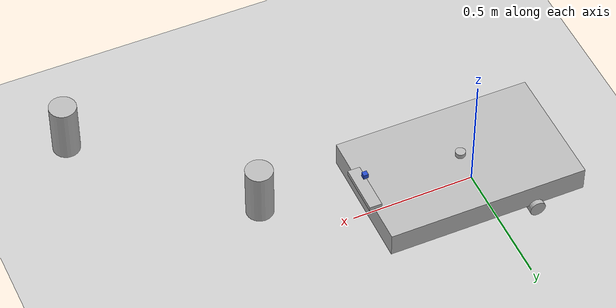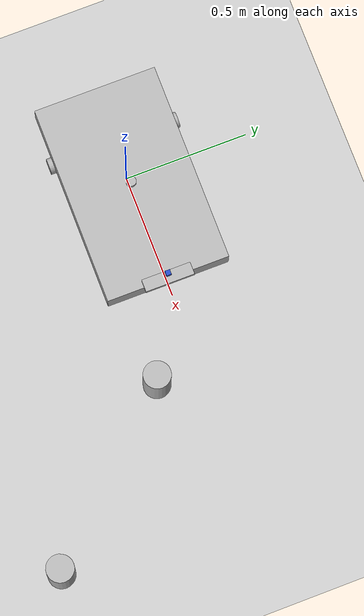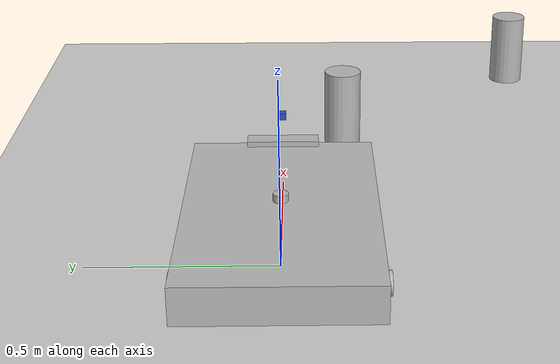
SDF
<sdf version="1.7">
 <world name="default">
  <light name="sun" type="directional">
   <pose>0 0 10 0 -0 0</pose>
   <diffuse>0.8 0.8 0.8 1</diffuse>
   <specular>0.2 0.2 0.2 1</specular>
   <attenuation>
    <range>1000</range>
    <constant>0.9</constant>
    <linear>0.01</linear>
    <quadratic>0.001</quadratic>
   </attenuation>
   <direction>-0.5 0.1 -0.9</direction>
   <spot><inner_angle>0</inner_angle><outer_angle>0</outer_angle><falloff>0</falloff></spot>
  </light>
  <model name="ground_plane">
   <static>1</static>
   <link name="link">
    <collision name="collision">
     <geometry><plane><normal>0 0 1</normal><size>100 100</size></plane></geometry>
     <surface><friction><ode><mu>100</mu><mu2>50</mu2></ode></friction></surface>
    </collision>
    <visual name="visual">
     <cast_shadows>0</cast_shadows>
     <geometry><plane><normal>0 0 1</normal><size>100 100</size></plane></geometry>
     <material>
      <script><uri>file://media/materials/scripts/gazebo.material</uri><name>Gazebo/Grey</name></script>
     </material>
    </visual>
   </link>
  </model>
  <gravity>0 0 -9.8</gravity>
  <magnetic_field>6e-06 2.3e-05 -4.2e-05</magnetic_field>
  <atmosphere type="adiabatic"/>
  <physics type="ode">
   <max_step_size>0.001</max_step_size>
   <real_time_factor>1</real_time_factor>
   <real_time_update_rate>1000</real_time_update_rate>
  </physics>
  <scene><ambient>0.4 0.4 0.4 1</ambient><background>0.7 0.7 0.7 1</background><shadows>1</shadows></scene>
  <audio><device>default</device></audio>
  <spherical_coordinates>
   <surface_model>EARTH_WGS84</surface_model>
   <latitude_deg>0</latitude_deg>
   <longitude_deg>0</longitude_deg>
   <elevation>0</elevation>
   <heading_deg>0</heading_deg>
  </spherical_coordinates>
  <model name="deratebot">
   <link name="base_link">
    <inertial>
     <pose>0.008789 0 0.007579 1.5708 -0 1.5708</pose>
     <mass>1.14</mass>
     <inertia>
      <ixx>0.0259943</ixx>
      <ixy>-1.31102e-19</ixy>
      <ixz>-1.0006e-18</ixz>
      <iyy>0.0789348</iyy>
      <iyz>-0.000450539</iyz>
      <izz>0.0561688</izz>
     </inertia>
    </inertial>
    <collision name="base_link_collision"><geometry><box><size>0.809 0.5 0.1</size></box></geometry></collision>
    <collision name="base_link_fixed_joint_lump__caster_link_collision_1">
     <pose>0.202 0 -0.076 0 -0 0</pose>
     <geometry><sphere><radius>0.016</radius></sphere></geometry>
     <surface>
      <contact><ode><kp>1e+06</kp><kd>10</kd></ode></contact>
      <friction><ode><mu>0</mu><mu2>0</mu2></ode></friction>
     </surface>
    </collision>
    <collision name="base_link_fixed_joint_lump__fight_fixed_link_collision_2">
     <pose>0.4 0 0.035 0 -0 0</pose>
     <geometry><box><size>0.01 0.01 0.03</size></box></geometry>
    </collision>
    <collision name="base_link_fixed_joint_lump__camera_link_collision_3">
     <pose>0.4 0 0.135 0 -0 0</pose>
     <geometry><box><size>0.02 0.02 0.02</size></box></geometry>
    </collision>
    <collision name="base_link_fixed_joint_lump__imu_link_collision_4">
     <pose>0 0 0.02 0 -0 0</pose>
     <geometry><box><size>0.02 0.02 0.02</size></box></geometry>
    </collision>
    <collision name="base_link_fixed_joint_lump__laser_link_collision_5">
     <pose>0 0 0.075 0 -0 0</pose>
     <geometry><cylinder><length>0.02</length><radius>0.02</radius></cylinder></geometry>
    </collision>
    <visual name="base_link_visual"><geometry><box><size>0.809 0.5 0.1</size></box></geometry></visual>
    <visual name="base_link_fixed_joint_lump__caster_link_visual_1">
     <pose>0.202 0 -0.076 0 -0 0</pose>
     <geometry><sphere><radius>0.016</radius></sphere></geometry>
     <material>
      <script><name>Gazebo/Black</name><uri>file://media/materials/scripts/gazebo.material</uri></script>
     </material>
    </visual>
    <visual name="base_link_fixed_joint_lump__fight_fixed_link_visual_2">
     <pose>0.4 0 0.035 0 -0 0</pose>
     <geometry><box><size>0.01 0.01 0.03</size></box></geometry>
    </visual>
    <visual name="base_link_fixed_joint_lump__camera_link_visual_3">
     <pose>0.4 0 0.135 0 -0 0</pose>
     <geometry><box><size>0.02 0.02 0.02</size></box></geometry>
     <material>
      <script><name>Gazebo/Blue</name><uri>file://media/materials/scripts/gazebo.material</uri></script>
     </material>
    </visual>
    <visual name="base_link_fixed_joint_lump__imu_link_visual_4">
     <pose>0 0 0.02 0 -0 0</pose>
     <geometry><box><size>0.02 0.02 0.02</size></box></geometry>
    </visual>
    <visual name="base_link_fixed_joint_lump__laser_link_visual_5">
     <pose>0 0 0.075 0 -0 0</pose>
     <geometry><cylinder><length>0.02</length><radius>0.02</radius></cylinder></geometry>
    </visual>
    <sensor name="camera" type="camera">
     <update_rate>30</update_rate>
     <camera name="head">
      <horizontal_fov>1.39626</horizontal_fov>
      <image><width>800</width><height>800</height><format>R8G8B8</format></image>
      <clip><near>0.02</near><far>300</far></clip>
      <noise><type>gaussian</type><mean>0</mean><stddev>0.007</stddev></noise>
     </camera>
     <plugin name="camera_controller" filename="libgazebo_ros_camera.so">
      <alwaysOn>1</alwaysOn>
      <updateRate>0.0</updateRate>
      <cameraName>/camera</cameraName>
      <imageTopicName>image_raw</imageTopicName>
      <cameraInfoTopicName>camera_info</cameraInfoTopicName>
      <frameName>camera_link</frameName>
      <hackBaseline>0.07</hackBaseline>
     </plugin>
     <pose>0.4 0 0.135 0 -0 0</pose>
    </sensor>
    <sensor name="imu_sensor" type="imu">
     <plugin name="imu_plugin" filename="libgazebo_ros_imu_sensor.so">
      <ros><namespace>/</namespace><remapping>~/out:=imu</remapping></ros>
      <initial_orientation_as_reference>0</initial_orientation_as_reference>
     </plugin>
     <always_on>1</always_on>
     <update_rate>100</update_rate>
     <visualize>1</visualize>
     <imu>
      <angular_velocity>
       <x>
        <noise type="gaussian">
         <mean>0</mean>
         <stddev>0.0002</stddev>
         <bias_mean>7.5e-06</bias_mean>
         <bias_stddev>8e-07</bias_stddev>
        </noise>
       </x>
       <y>
        <noise type="gaussian">
         <mean>0</mean>
         <stddev>0.0002</stddev>
         <bias_mean>7.5e-06</bias_mean>
         <bias_stddev>8e-07</bias_stddev>
        </noise>
       </y>
       <z>
        <noise type="gaussian">
         <mean>0</mean>
         <stddev>0.0002</stddev>
         <bias_mean>7.5e-06</bias_mean>
         <bias_stddev>8e-07</bias_stddev>
        </noise>
       </z>
      </angular_velocity>
      <linear_acceleration>
       <x>
        <noise type="gaussian">
         <mean>0</mean>
         <stddev>0.017</stddev>
         <bias_mean>0.1</bias_mean>
         <bias_stddev>0.001</bias_stddev>
        </noise>
       </x>
       <y>
        <noise type="gaussian">
         <mean>0</mean>
         <stddev>0.017</stddev>
         <bias_mean>0.1</bias_mean>
         <bias_stddev>0.001</bias_stddev>
        </noise>
       </y>
       <z>
        <noise type="gaussian">
         <mean>0</mean>
         <stddev>0.017</stddev>
         <bias_mean>0.1</bias_mean>
         <bias_stddev>0.001</bias_stddev>
        </noise>
       </z>
      </linear_acceleration>
     </imu>
     <pose>0 0 0.02 0 -0 0</pose>
    </sensor>
    <sensor name="laser_sensor" type="ray">
     <always_on>1</always_on>
     <visualize>1</visualize>
     <update_rate>10</update_rate>
     <ray>
      <scan>
       <horizontal>
        <samples>360</samples>
        <resolution>1</resolution>
        <min_angle>0</min_angle>
        <max_angle>6.28</max_angle>
       </horizontal>
       <vertical><samples>1</samples><min_angle>0</min_angle><max_angle>0</max_angle></vertical>
      </scan>
      <range><min>0.12</min><max>3.5</max><resolution>0.015</resolution></range>
      <noise><type>gaussian</type><mean>0</mean><stddev>0.01</stddev></noise>
     </ray>
     <plugin name="laserscan" filename="libgazebo_ros_ray_sensor.so">
      <ros><remapping>~/out:=scan</remapping></ros>
      <output_type>sensor_msgs/LaserScan</output_type>
      <frame_name>laser_link</frame_name>
     </plugin>
     <pose>0 0 0.075 0 -0 0</pose>
    </sensor>
   </link>
   <joint name="fight1_joint" type="prismatic">
    <pose relative_to="base_link">0.15 0 0.035 0 -0 0</pose>
    <parent>base_link</parent>
    <child>fight1_link</child>
    <axis>
     <xyz>1 0 0</xyz>
     <limit><lower>0</lower><upper>0.5</upper><effort>0.1</effort><velocity>0.15</velocity></limit>
     <dynamics><spring_reference>0</spring_reference><spring_stiffness>0</spring_stiffness></dynamics>
    </axis>
   </joint>
   <link name="fight1_link">
    <pose relative_to="fight1_joint">0 0 0 0 -0 0</pose>
    <inertial>
     <pose>0 0 0 1.5708 -0 1.5708</pose>
     <mass>0.01</mass>
     <inertia>
      <ixx>2.41667e-06</ixx>
      <ixy>0</ixy>
      <ixz>0</ixz>
      <iyy>0.000210417</iyy>
      <iyz>0</iyz>
      <izz>0.000208667</izz>
     </inertia>
    </inertial>
    <collision name="fight1_link_collision"><geometry><box><size>0.5 0.05 0.02</size></box></geometry></collision>
    <visual name="fight1_link_visual"><geometry><box><size>0.5 0.05 0.02</size></box></geometry></visual>
   </link>
   <joint name="fight2_joint" type="revolute">
    <pose relative_to="fight1_link">0.25 0 0.02 0 -0 0</pose>
    <parent>fight1_link</parent>
    <child>fight2_link</child>
    <axis>
     <xyz>0 0 1</xyz>
     <limit><lower>-1e+16</lower><upper>1e+16</upper></limit>
     <dynamics><spring_reference>0</spring_reference><spring_stiffness>0</spring_stiffness></dynamics>
    </axis>
   </joint>
   <link name="fight2_link">
    <pose relative_to="fight2_joint">0 0 0 0 -0 0</pose>
    <inertial>
     <pose>0 0 0 1.5708 -0 1.5708</pose>
     <mass>0.01</mass>
     <inertia>
      <ixx>2.41667e-06</ixx>
      <ixy>0</ixy>
      <ixz>0</ixz>
      <iyy>3.54167e-05</iyy>
      <iyz>0</iyz>
      <izz>3.36667e-05</izz>
     </inertia>
    </inertial>
    <collision name="fight2_link_collision"><geometry><box><size>0.2 0.05 0.02</size></box></geometry></collision>
    <visual name="fight2_link_visual">
     <pose>0 0 0 0 -0 1.57</pose>
     <geometry><box><size>0.2 0.05 0.02</size></box></geometry>
    </visual>
   </link>
   <joint name="left_wheel_joint" type="revolute">
    <pose relative_to="base_link">-0.202 0.25 -0.06 0 -0 0</pose>
    <parent>base_link</parent>
    <child>left_wheel_link</child>
    <axis>
     <xyz>0 1 0</xyz>
     <limit><lower>-1e+16</lower><upper>1e+16</upper></limit>
     <dynamics><spring_reference>0</spring_reference><spring_stiffness>0</spring_stiffness></dynamics>
    </axis>
   </joint>
   <link name="left_wheel_link">
    <pose relative_to="left_wheel_joint">0 0 0 0 -0 0</pose>
    <inertial>
     <pose>0 0 0 1.5708 -0 0</pose>
     <mass>0.1</mass>
     <inertia>
      <ixx>3.89333e-05</ixx>
      <ixy>0</ixy>
      <ixz>0</ixz>
      <iyy>3.89333e-05</iyy>
      <iyz>0</iyz>
      <izz>5.12e-05</izz>
     </inertia>
    </inertial>
    <collision name="left_wheel_link_collision">
     <pose>0 0 0 1.57079 -0 0</pose>
     <geometry><cylinder><length>0.04</length><radius>0.032</radius></cylinder></geometry>
    </collision>
    <visual name="left_wheel_link_visual">
     <pose>0 0 0 1.57079 -0 0</pose>
     <geometry><cylinder><length>0.04</length><radius>0.032</radius></cylinder></geometry>
    </visual>
   </link>
   <joint name="right_wheel_joint" type="revolute">
    <pose relative_to="base_link">-0.202 -0.25 -0.06 0 -0 0</pose>
    <parent>base_link</parent>
    <child>right_wheel_link</child>
    <axis>
     <xyz>0 1 0</xyz>
     <limit><lower>-1e+16</lower><upper>1e+16</upper></limit>
     <dynamics><spring_reference>0</spring_reference><spring_stiffness>0</spring_stiffness></dynamics>
    </axis>
   </joint>
   <link name="right_wheel_link">
    <pose relative_to="right_wheel_joint">0 0 0 0 -0 0</pose>
    <inertial>
     <pose>0 0 0 1.5708 -0 0</pose>
     <mass>0.1</mass>
     <inertia>
      <ixx>3.89333e-05</ixx>
      <ixy>0</ixy>
      <ixz>0</ixz>
      <iyy>3.89333e-05</iyy>
      <iyz>0</iyz>
      <izz>5.12e-05</izz>
     </inertia>
    </inertial>
    <collision name="right_wheel_link_collision">
     <pose>0 0 0 1.57079 -0 0</pose>
     <geometry><cylinder><length>0.04</length><radius>0.032</radius></cylinder></geometry>
    </collision>
    <visual name="right_wheel_link_visual">
     <pose>0 0 0 1.57079 -0 0</pose>
     <geometry><cylinder><length>0.04</length><radius>0.032</radius></cylinder></geometry>
    </visual>
   </link>
   <static>0</static>
   <plugin name="diff_drive" filename="libgazebo_ros_diff_drive.so">
    <ros><namespace>/</namespace><remapping>cmd_vel:=cmd_vel</remapping><remapping>odom:=odom</remapping></ros>
    <update_rate>30</update_rate>
    <left_joint>left_wheel_joint</left_joint>
    <right_joint>right_wheel_joint</right_joint>
    <wheel_separation>0.2</wheel_separation>
    <wheel_diameter>0.065</wheel_diameter>
    <max_wheel_torque>20</max_wheel_torque>
    <max_wheel_acceleration>1.0</max_wheel_acceleration>
    <publish_odom>1</publish_odom>
    <publish_odom_tf>1</publish_odom_tf>
    <publish_wheel_tf>1</publish_wheel_tf>
    <odometry_frame>odom</odometry_frame>
    <robot_base_frame>base_footprint</robot_base_frame>
   </plugin>
   <pose>0.055859 -0.000854 0.091997 -1e-06 1.7e-05 -0.00138</pose>
  </model>
  <model name="beer">
   <link name="link">
    <pose>0 0 0.115 0 -0 0</pose>
    <inertial>
     <mass>0.39</mass>
     <inertia><ixx>0.00058</ixx><ixy>0</ixy><ixz>0</ixz><iyy>0.00058</iyy><iyz>0</iyz><izz>0.00019</izz></inertia>
    </inertial>
    <collision name="collision">
     <geometry><cylinder><radius>0.055</radius><length>0.23</length></cylinder></geometry>
    </collision>
    <visual name="visual">
     <geometry><cylinder><radius>0.055</radius><length>0.23</length></cylinder></geometry>
     <material>
      <script>
       <uri>model://beer/materials/scripts</uri>
       <uri>model://beer/materials/textures</uri>
       <name>Beer/Diffuse</name>
      </script>
     </material>
    </visual>
   </link>
   <pose>0.809266 -0.181751 -7e-06 -1e-06 -0 -4e-06</pose>
  </model>
  <model name="beer_0">
   <link name="link">
    <pose>0 0 0.115 0 -0 0</pose>
    <inertial>
     <mass>0.39</mass>
     <inertia><ixx>0.00058</ixx><ixy>0</ixy><ixz>0</ixz><iyy>0.00058</iyy><iyz>0</iyz><izz>0.00019</izz></inertia>
    </inertial>
    <collision name="collision">
     <geometry><cylinder><radius>0.055</radius><length>0.23</length></cylinder></geometry>
    </collision>
    <visual name="visual">
     <geometry><cylinder><radius>0.055</radius><length>0.23</length></cylinder></geometry>
     <material>
      <script>
       <uri>model://beer/materials/scripts</uri>
       <uri>model://beer/materials/textures</uri>
       <name>Beer/Diffuse</name>
      </script>
     </material>
    </visual>
   </link>
   <pose>1.36756 -0.785243 -2e-06 1e-06 -0 -3e-06</pose>
  </model>
 </world>
</sdf>
